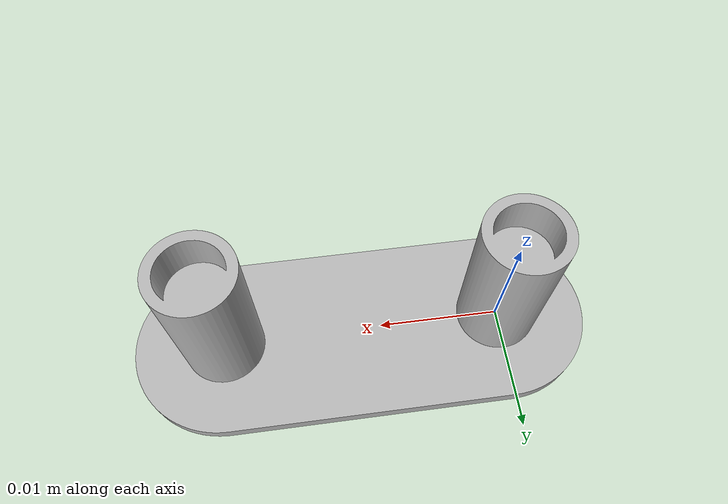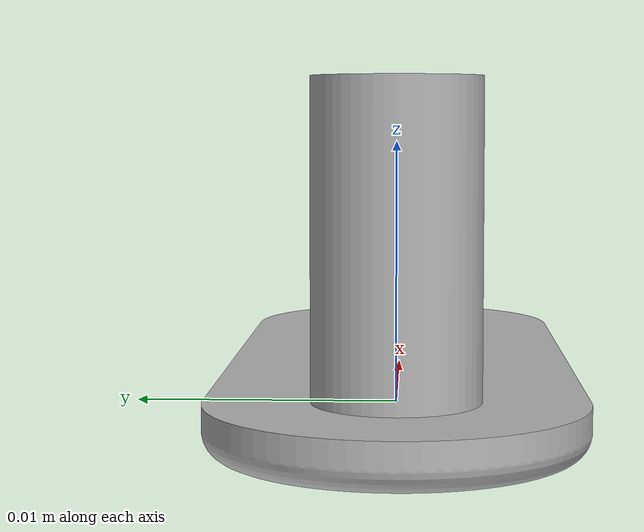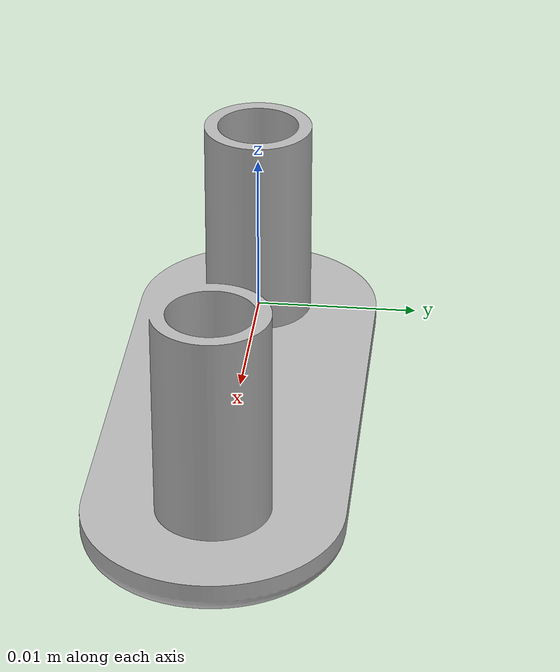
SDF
<?xml version="1.0" ?>
<sdf version="1.5">
  <model name="bottom_casing">
    <static>false</static>
    <link name="link">
      <collision name="collision">
        <geometry>
          <mesh>
            <scale>0.001 0.001 0.001</scale>
            <uri>model://bottom_casing/meshes/bottom_casing.dae</uri>
          </mesh>
        </geometry>
      </collision>
      <visual name="visual">
        <geometry>
          <mesh>
            <scale>0.001 0.001 0.001</scale>
            <uri>model://bottom_casing/meshes/bottom_casing.dae</uri>
          </mesh>
        </geometry>
      </visual>
    </link>
  </model>
</sdf>
